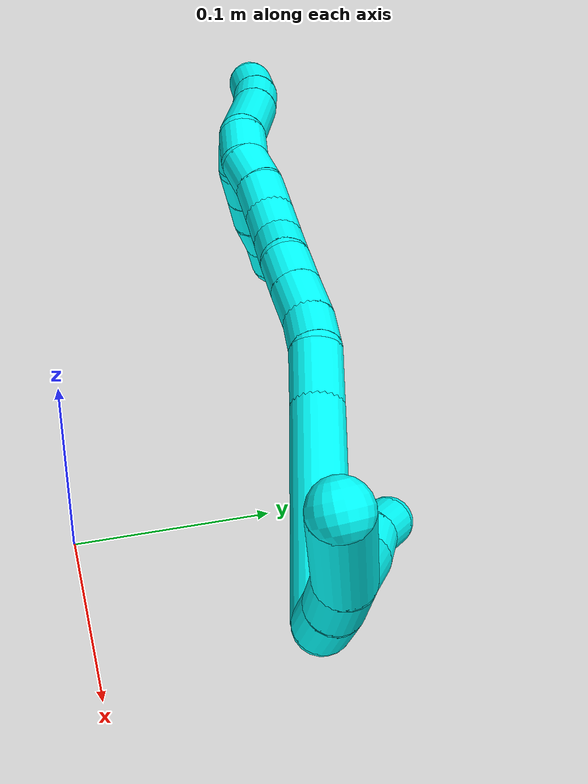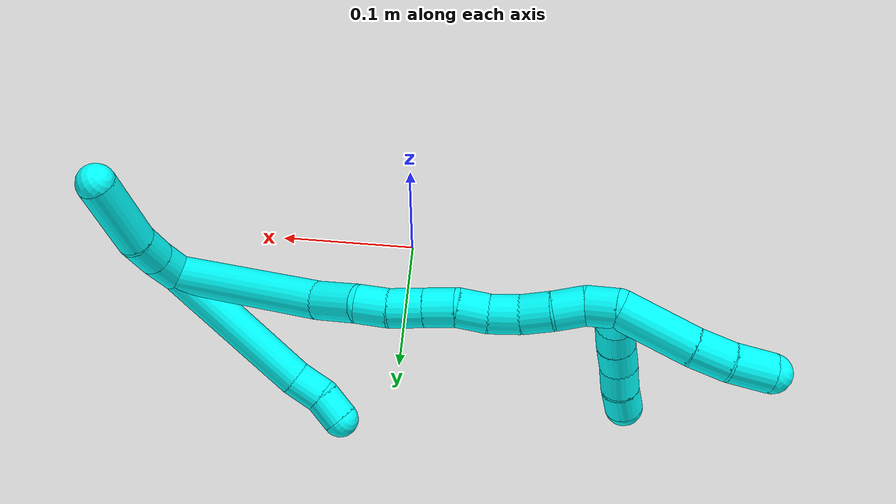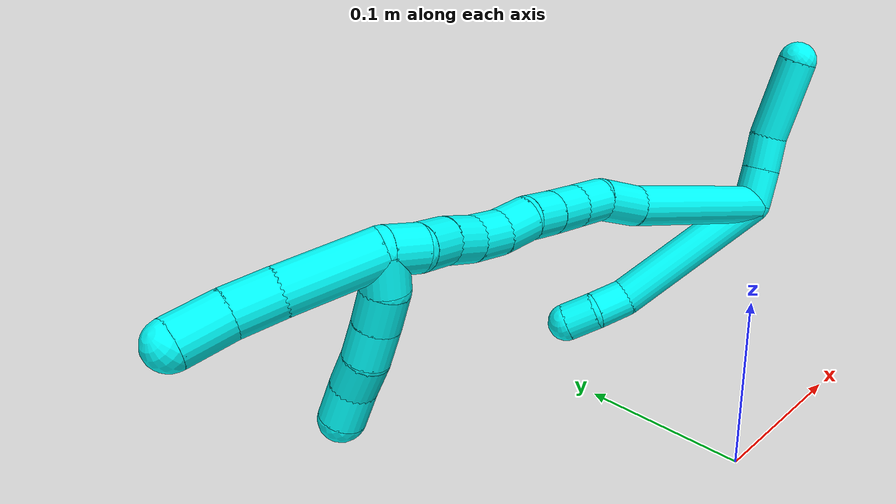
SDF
<sdf version="1.7">
 <world name="default">
  <model name="3">
   <static>0</static>
   <link name="3">
    <collision name="collision-cylinder-e_1_2_8">
     <pose>0.004781 -0.052834 -0.007201 1.70625 0.089425 0.102417</pose>
     <geometry><cylinder><radius>0.0125</radius><length>0.107073</length></cylinder></geometry>
     <surface>
      <friction><ode><mu>1.16</mu><mu2>1.16</mu2><slip1>0</slip1><slip2>0</slip2></ode></friction>
      <contact><ode><kp>1e+06</kp><kd>1</kd><max_vel>0</max_vel><min_depth>0.001</min_depth></ode></contact>
     </surface>
    </collision>
    <visual name="visual-cylinder-e_1_2_8">
     <pose>0.004781 -0.052834 -0.007201 1.70625 0.089425 0.102417</pose>
     <geometry><cylinder><radius>0.0125</radius><length>0.107073</length></cylinder></geometry>
     <material><ambient>0.003922 1 0.996078 1</ambient></material>
    </visual>
    <collision name="collision-cylinder-e_2_8_9">
     <pose>0.011243 -0.115775 -0.019031 2.00031 0.150084 0.233199</pose>
     <geometry><cylinder><radius>0.0125</radius><length>0.022487</length></cylinder></geometry>
     <surface>
      <friction><ode><mu>1.16</mu><mu2>1.16</mu2><slip1>0</slip1><slip2>0</slip2></ode></friction>
      <contact><ode><kp>1e+06</kp><kd>1</kd><max_vel>0</max_vel><min_depth>0.001</min_depth></ode></contact>
     </surface>
    </collision>
    <visual name="visual-cylinder-e_2_8_9">
     <pose>0.011243 -0.115775 -0.019031 2.00031 0.150084 0.233199</pose>
     <geometry><cylinder><radius>0.0125</radius><length>0.022487</length></cylinder></geometry>
     <material><ambient>0.003922 1 0.996078 1</ambient></material>
    </visual>
    <collision name="collision-cylinder-e_3_9_6">
     <pose>0.016398 -0.135326 -0.025449 1.75805 0.346818 0.416808</pose>
     <geometry><cylinder><radius>0.0125</radius><length>0.02044</length></cylinder></geometry>
     <surface>
      <friction><ode><mu>1.16</mu><mu2>1.16</mu2><slip1>0</slip1><slip2>0</slip2></ode></friction>
      <contact><ode><kp>1e+06</kp><kd>1</kd><max_vel>0</max_vel><min_depth>0.001</min_depth></ode></contact>
     </surface>
    </collision>
    <visual name="visual-cylinder-e_3_9_6">
     <pose>0.016398 -0.135326 -0.025449 1.75805 0.346818 0.416808</pose>
     <geometry><cylinder><radius>0.0125</radius><length>0.02044</length></cylinder></geometry>
     <material><ambient>0.003922 1 0.996078 1</ambient></material>
    </visual>
    <collision name="collision-cylinder-e_1_2_10">
     <pose>0.004849 0.010512 -0.004087 -1.94159 0.406061 -0.584589</pose>
     <geometry><cylinder><radius>0.0125</radius><length>0.024554</length></cylinder></geometry>
     <surface>
      <friction><ode><mu>1.16</mu><mu2>1.16</mu2><slip1>0</slip1><slip2>0</slip2></ode></friction>
      <contact><ode><kp>1e+06</kp><kd>1</kd><max_vel>0</max_vel><min_depth>0.001</min_depth></ode></contact>
     </surface>
    </collision>
    <visual name="visual-cylinder-e_1_2_10">
     <pose>0.004849 0.010512 -0.004087 -1.94159 0.406061 -0.584589</pose>
     <geometry><cylinder><radius>0.0125</radius><length>0.024554</length></cylinder></geometry>
     <material><ambient>0.003922 1 0.996078 1</ambient></material>
    </visual>
    <collision name="collision-cylinder-e_2_10_11">
     <pose>0.014024 0.030395 -0.013085 -2.05357 0.388116 -0.628283</pose>
     <geometry><cylinder><radius>0.0125</radius><length>0.022861</length></cylinder></geometry>
     <surface>
      <friction><ode><mu>1.16</mu><mu2>1.16</mu2><slip1>0</slip1><slip2>0</slip2></ode></friction>
      <contact><ode><kp>1e+06</kp><kd>1</kd><max_vel>0</max_vel><min_depth>0.001</min_depth></ode></contact>
     </surface>
    </collision>
    <visual name="visual-cylinder-e_2_10_11">
     <pose>0.014024 0.030395 -0.013085 -2.05357 0.388116 -0.628283</pose>
     <geometry><cylinder><radius>0.0125</radius><length>0.022861</length></cylinder></geometry>
     <material><ambient>0.003922 1 0.996078 1</ambient></material>
    </visual>
    <collision name="collision-cylinder-e_3_11_5">
     <pose>0.023322 0.062152 -0.030862 -2.0924 0.190226 -0.326779</pose>
     <geometry><cylinder><radius>0.0125</radius><length>0.052585</length></cylinder></geometry>
     <surface>
      <friction><ode><mu>1.16</mu><mu2>1.16</mu2><slip1>0</slip1><slip2>0</slip2></ode></friction>
      <contact><ode><kp>1e+06</kp><kd>1</kd><max_vel>0</max_vel><min_depth>0.001</min_depth></ode></contact>
     </surface>
    </collision>
    <visual name="visual-cylinder-e_3_11_5">
     <pose>0.023322 0.062152 -0.030862 -2.0924 0.190226 -0.326779</pose>
     <geometry><cylinder><radius>0.0125</radius><length>0.052585</length></cylinder></geometry>
     <material><ambient>0.003922 1 0.996078 1</ambient></material>
    </visual>
    <collision name="collision-cylinder-e_1_2_12">
     <pose>0.00473 -0.030917 -0.043187 2.52029 0.088826 0.275109</pose>
     <geometry><cylinder><radius>0.0125</radius><length>0.106646</length></cylinder></geometry>
     <surface>
      <friction><ode><mu>1.16</mu><mu2>1.16</mu2><slip1>0</slip1><slip2>0</slip2></ode></friction>
      <contact><ode><kp>1e+06</kp><kd>1</kd><max_vel>0</max_vel><min_depth>0.001</min_depth></ode></contact>
     </surface>
    </collision>
    <visual name="visual-cylinder-e_1_2_12">
     <pose>0.00473 -0.030917 -0.043187 2.52029 0.088826 0.275109</pose>
     <geometry><cylinder><radius>0.0125</radius><length>0.106646</length></cylinder></geometry>
     <material><ambient>0.003922 1 0.996078 1</ambient></material>
    </visual>
    <collision name="collision-cylinder-e_2_12_13">
     <pose>0.011126 -0.068429 -0.099364 2.67179 0.113856 0.467556</pose>
     <geometry><cylinder><radius>0.0125</radius><length>0.029327</length></cylinder></geometry>
     <surface>
      <friction><ode><mu>1.16</mu><mu2>1.16</mu2><slip1>0</slip1><slip2>0</slip2></ode></friction>
      <contact><ode><kp>1e+06</kp><kd>1</kd><max_vel>0</max_vel><min_depth>0.001</min_depth></ode></contact>
     </surface>
    </collision>
    <visual name="visual-cylinder-e_2_12_13">
     <pose>0.011126 -0.068429 -0.099364 2.67179 0.113856 0.467556</pose>
     <geometry><cylinder><radius>0.0125</radius><length>0.029327</length></cylinder></geometry>
     <material><ambient>0.003922 1 0.996078 1</ambient></material>
    </visual>
    <collision name="collision-cylinder-e_3_13_14">
     <pose>0.011972 -0.081929 -0.119982 2.40591 -0.079601 -0.20593</pose>
     <geometry><cylinder><radius>0.0125</radius><length>0.020644</length></cylinder></geometry>
     <surface>
      <friction><ode><mu>1.16</mu><mu2>1.16</mu2><slip1>0</slip1><slip2>0</slip2></ode></friction>
      <contact><ode><kp>1e+06</kp><kd>1</kd><max_vel>0</max_vel><min_depth>0.001</min_depth></ode></contact>
     </surface>
    </collision>
    <visual name="visual-cylinder-e_3_13_14">
     <pose>0.011972 -0.081929 -0.119982 2.40591 -0.079601 -0.20593</pose>
     <geometry><cylinder><radius>0.0125</radius><length>0.020644</length></cylinder></geometry>
     <material><ambient>0.003922 1 0.996078 1</ambient></material>
    </visual>
    <collision name="collision-cylinder-e_4_14_15">
     <pose>0.009046 -0.095253 -0.13657 2.51994 -0.188733 -0.573056</pose>
     <geometry><cylinder><radius>0.0125</radius><length>0.02244</length></cylinder></geometry>
     <surface>
      <friction><ode><mu>1.16</mu><mu2>1.16</mu2><slip1>0</slip1><slip2>0</slip2></ode></friction>
      <contact><ode><kp>1e+06</kp><kd>1</kd><max_vel>0</max_vel><min_depth>0.001</min_depth></ode></contact>
     </surface>
    </collision>
    <visual name="visual-cylinder-e_4_14_15">
     <pose>0.009046 -0.095253 -0.13657 2.51994 -0.188733 -0.573056</pose>
     <geometry><cylinder><radius>0.0125</radius><length>0.02244</length></cylinder></geometry>
     <material><ambient>0.003922 1 0.996078 1</ambient></material>
    </visual>
    <collision name="collision-cylinder-e_5_15_16">
     <pose>0.005234 -0.107335 -0.153685 2.53461 -0.170235 -0.531998</pose>
     <geometry><cylinder><radius>0.0125</radius><length>0.020152</length></cylinder></geometry>
     <surface>
      <friction><ode><mu>1.16</mu><mu2>1.16</mu2><slip1>0</slip1><slip2>0</slip2></ode></friction>
      <contact><ode><kp>1e+06</kp><kd>1</kd><max_vel>0</max_vel><min_depth>0.001</min_depth></ode></contact>
     </surface>
    </collision>
    <visual name="visual-cylinder-e_5_15_16">
     <pose>0.005234 -0.107335 -0.153685 2.53461 -0.170235 -0.531998</pose>
     <geometry><cylinder><radius>0.0125</radius><length>0.020152</length></cylinder></geometry>
     <material><ambient>0.003922 1 0.996078 1</ambient></material>
    </visual>
    <collision name="collision-cylinder-e_6_16_17">
     <pose>0.001977 -0.120855 -0.168214 2.25229 -0.152052 -0.31705</pose>
     <geometry><cylinder><radius>0.0125</radius><length>0.020466</length></cylinder></geometry>
     <surface>
      <friction><ode><mu>1.16</mu><mu2>1.16</mu2><slip1>0</slip1><slip2>0</slip2></ode></friction>
      <contact><ode><kp>1e+06</kp><kd>1</kd><max_vel>0</max_vel><min_depth>0.001</min_depth></ode></contact>
     </surface>
    </collision>
    <visual name="visual-cylinder-e_6_16_17">
     <pose>0.001977 -0.120855 -0.168214 2.25229 -0.152052 -0.31705</pose>
     <geometry><cylinder><radius>0.0125</radius><length>0.020466</length></cylinder></geometry>
     <material><ambient>0.003922 1 0.996078 1</ambient></material>
    </visual>
    <collision name="collision-cylinder-e_7_17_18">
     <pose>-0.001071 -0.1346 -0.182647 2.51061 -0.148858 -0.449207</pose>
     <geometry><cylinder><radius>0.0125</radius><length>0.020189</length></cylinder></geometry>
     <surface>
      <friction><ode><mu>1.16</mu><mu2>1.16</mu2><slip1>0</slip1><slip2>0</slip2></ode></friction>
      <contact><ode><kp>1e+06</kp><kd>1</kd><max_vel>0</max_vel><min_depth>0.001</min_depth></ode></contact>
     </surface>
    </collision>
    <visual name="visual-cylinder-e_7_17_18">
     <pose>-0.001071 -0.1346 -0.182647 2.51061 -0.148858 -0.449207</pose>
     <geometry><cylinder><radius>0.0125</radius><length>0.020189</length></cylinder></geometry>
     <material><ambient>0.003922 1 0.996078 1</ambient></material>
    </visual>
    <collision name="collision-cylinder-e_8_18_19">
     <pose>-0.004053 -0.1449 -0.199572 2.67992 -0.148941 -0.614769</pose>
     <geometry><cylinder><radius>0.0125</radius><length>0.020023</length></cylinder></geometry>
     <surface>
      <friction><ode><mu>1.16</mu><mu2>1.16</mu2><slip1>0</slip1><slip2>0</slip2></ode></friction>
      <contact><ode><kp>1e+06</kp><kd>1</kd><max_vel>0</max_vel><min_depth>0.001</min_depth></ode></contact>
     </surface>
    </collision>
    <visual name="visual-cylinder-e_8_18_19">
     <pose>-0.004053 -0.1449 -0.199572 2.67992 -0.148941 -0.614769</pose>
     <geometry><cylinder><radius>0.0125</radius><length>0.020023</length></cylinder></geometry>
     <material><ambient>0.003922 1 0.996078 1</ambient></material>
    </visual>
    <collision name="collision-cylinder-e_9_19_20">
     <pose>-0.008492 -0.153973 -0.216829 2.63451 -0.298437 -1.05145</pose>
     <geometry><cylinder><radius>0.0125</radius><length>0.02009</length></cylinder></geometry>
     <surface>
      <friction><ode><mu>1.16</mu><mu2>1.16</mu2><slip1>0</slip1><slip2>0</slip2></ode></friction>
      <contact><ode><kp>1e+06</kp><kd>1</kd><max_vel>0</max_vel><min_depth>0.001</min_depth></ode></contact>
     </surface>
    </collision>
    <visual name="visual-cylinder-e_9_19_20">
     <pose>-0.008492 -0.153973 -0.216829 2.63451 -0.298437 -1.05145</pose>
     <geometry><cylinder><radius>0.0125</radius><length>0.02009</length></cylinder></geometry>
     <material><ambient>0.003922 1 0.996078 1</ambient></material>
    </visual>
    <collision name="collision-cylinder-e_10_20_1">
     <pose>-0.01144 -0.164314 -0.233466 2.53841 0.000626 0.002011</pose>
     <geometry><cylinder><radius>0.0125</radius><length>0.020022</length></cylinder></geometry>
     <surface>
      <friction><ode><mu>1.16</mu><mu2>1.16</mu2><slip1>0</slip1><slip2>0</slip2></ode></friction>
      <contact><ode><kp>1e+06</kp><kd>1</kd><max_vel>0</max_vel><min_depth>0.001</min_depth></ode></contact>
     </surface>
    </collision>
    <visual name="visual-cylinder-e_10_20_1">
     <pose>-0.01144 -0.164314 -0.233466 2.53841 0.000626 0.002011</pose>
     <geometry><cylinder><radius>0.0125</radius><length>0.020022</length></cylinder></geometry>
     <material><ambient>0.003922 1 0.996078 1</ambient></material>
    </visual>
    <collision name="collision-cylinder-e_1_1_21">
     <pose>-0.009471 -0.191487 -0.253942 2.08814 0.079187 0.136032</pose>
     <geometry><cylinder><radius>0.0125</radius><length>0.049617</length></cylinder></geometry>
     <surface>
      <friction><ode><mu>1.16</mu><mu2>1.16</mu2><slip1>0</slip1><slip2>0</slip2></ode></friction>
      <contact><ode><kp>1e+06</kp><kd>1</kd><max_vel>0</max_vel><min_depth>0.001</min_depth></ode></contact>
     </surface>
    </collision>
    <visual name="visual-cylinder-e_1_1_21">
     <pose>-0.009471 -0.191487 -0.253942 2.08814 0.079187 0.136032</pose>
     <geometry><cylinder><radius>0.0125</radius><length>0.049617</length></cylinder></geometry>
     <material><ambient>0.003922 1 0.996078 1</ambient></material>
    </visual>
    <collision name="collision-cylinder-e_2_21_22">
     <pose>-0.007497 -0.223177 -0.272616 2.13444 0.000966 0.001753</pose>
     <geometry><cylinder><radius>0.0125</radius><length>0.024121</length></cylinder></geometry>
     <surface>
      <friction><ode><mu>1.16</mu><mu2>1.16</mu2><slip1>0</slip1><slip2>0</slip2></ode></friction>
      <contact><ode><kp>1e+06</kp><kd>1</kd><max_vel>0</max_vel><min_depth>0.001</min_depth></ode></contact>
     </surface>
    </collision>
    <visual name="visual-cylinder-e_2_21_22">
     <pose>-0.007497 -0.223177 -0.272616 2.13444 0.000966 0.001753</pose>
     <geometry><cylinder><radius>0.0125</radius><length>0.024121</length></cylinder></geometry>
     <material><ambient>0.003922 1 0.996078 1</ambient></material>
    </visual>
    <collision name="collision-cylinder-e_3_22_4">
     <pose>-0.009457 -0.244103 -0.286366 2.16852 -0.150705 -0.28354</pose>
     <geometry><cylinder><radius>0.0125</radius><length>0.026262</length></cylinder></geometry>
     <surface>
      <friction><ode><mu>1.16</mu><mu2>1.16</mu2><slip1>0</slip1><slip2>0</slip2></ode></friction>
      <contact><ode><kp>1e+06</kp><kd>1</kd><max_vel>0</max_vel><min_depth>0.001</min_depth></ode></contact>
     </surface>
    </collision>
    <visual name="visual-cylinder-e_3_22_4">
     <pose>-0.009457 -0.244103 -0.286366 2.16852 -0.150705 -0.28354</pose>
     <geometry><cylinder><radius>0.0125</radius><length>0.026262</length></cylinder></geometry>
     <material><ambient>0.003922 1 0.996078 1</ambient></material>
    </visual>
    <collision name="collision-cylinder-e_1_1_23">
     <pose>-0.014591 -0.176464 -0.234771 0.750484 -0.321229 -0.127461</pose>
     <geometry><cylinder><radius>0.0125</radius><length>0.02</length></cylinder></geometry>
     <surface>
      <friction><ode><mu>1.16</mu><mu2>1.16</mu2><slip1>0</slip1><slip2>0</slip2></ode></friction>
      <contact><ode><kp>1e+06</kp><kd>1</kd><max_vel>0</max_vel><min_depth>0.001</min_depth></ode></contact>
     </surface>
    </collision>
    <visual name="visual-cylinder-e_1_1_23">
     <pose>-0.014591 -0.176464 -0.234771 0.750484 -0.321229 -0.127461</pose>
     <geometry><cylinder><radius>0.0125</radius><length>0.02</length></cylinder></geometry>
     <material><ambient>0.003922 1 0.996078 1</ambient></material>
    </visual>
    <collision name="collision-cylinder-e_2_23_24">
     <pose>-0.018557 -0.19105 -0.222045 0.951336 -0.080955 -0.041718</pose>
     <geometry><cylinder><radius>0.0125</radius><length>0.02</length></cylinder></geometry>
     <surface>
      <friction><ode><mu>1.16</mu><mu2>1.16</mu2><slip1>0</slip1><slip2>0</slip2></ode></friction>
      <contact><ode><kp>1e+06</kp><kd>1</kd><max_vel>0</max_vel><min_depth>0.001</min_depth></ode></contact>
     </surface>
    </collision>
    <visual name="visual-cylinder-e_2_23_24">
     <pose>-0.018557 -0.19105 -0.222045 0.951336 -0.080955 -0.041718</pose>
     <geometry><cylinder><radius>0.0125</radius><length>0.02</length></cylinder></geometry>
     <material><ambient>0.003922 1 0.996078 1</ambient></material>
    </visual>
    <collision name="collision-cylinder-e_3_24_25">
     <pose>-0.020363 -0.207572 -0.210934 1.0063 -0.099889 -0.055011</pose>
     <geometry><cylinder><radius>0.0125</radius><length>0.02</length></cylinder></geometry>
     <surface>
      <friction><ode><mu>1.16</mu><mu2>1.16</mu2><slip1>0</slip1><slip2>0</slip2></ode></friction>
      <contact><ode><kp>1e+06</kp><kd>1</kd><max_vel>0</max_vel><min_depth>0.001</min_depth></ode></contact>
     </surface>
    </collision>
    <visual name="visual-cylinder-e_3_24_25">
     <pose>-0.020363 -0.207572 -0.210934 1.0063 -0.099889 -0.055011</pose>
     <geometry><cylinder><radius>0.0125</radius><length>0.02</length></cylinder></geometry>
     <material><ambient>0.003922 1 0.996078 1</ambient></material>
    </visual>
    <collision name="collision-cylinder-e_4_25_26">
     <pose>-0.020764 -0.224342 -0.200162 0.993336 0.059602 0.03231</pose>
     <geometry><cylinder><radius>0.0125</radius><length>0.02</length></cylinder></geometry>
     <surface>
      <friction><ode><mu>1.16</mu><mu2>1.16</mu2><slip1>0</slip1><slip2>0</slip2></ode></friction>
      <contact><ode><kp>1e+06</kp><kd>1</kd><max_vel>0</max_vel><min_depth>0.001</min_depth></ode></contact>
     </surface>
    </collision>
    <visual name="visual-cylinder-e_4_25_26">
     <pose>-0.020764 -0.224342 -0.200162 0.993336 0.059602 0.03231</pose>
     <geometry><cylinder><radius>0.0125</radius><length>0.02</length></cylinder></geometry>
     <material><ambient>0.003922 1 0.996078 1</ambient></material>
    </visual>
    <collision name="collision-cylinder-e_5_26_3">
     <pose>-0.020972 -0.241353 -0.189755 1.05023 -0.080461 -0.046633</pose>
     <geometry><cylinder><radius>0.0125</radius><length>0.02</length></cylinder></geometry>
     <surface>
      <friction><ode><mu>1.16</mu><mu2>1.16</mu2><slip1>0</slip1><slip2>0</slip2></ode></friction>
      <contact><ode><kp>1e+06</kp><kd>1</kd><max_vel>0</max_vel><min_depth>0.001</min_depth></ode></contact>
     </surface>
    </collision>
    <visual name="visual-cylinder-e_5_26_3">
     <pose>-0.020972 -0.241353 -0.189755 1.05023 -0.080461 -0.046633</pose>
     <geometry><cylinder><radius>0.0125</radius><length>0.02</length></cylinder></geometry>
     <material><ambient>0.003922 1 0.996078 1</ambient></material>
    </visual>
    <collision name="collision-sphere-3">
     <pose>-0.021776 -0.250001 -0.184797 0 -0 0</pose>
     <geometry><sphere><radius>0.0125</radius></sphere></geometry>
     <surface>
      <friction><ode><mu>1.16</mu><mu2>1.16</mu2><slip1>0</slip1><slip2>0</slip2></ode></friction>
      <contact><ode><kp>1e+06</kp><kd>1</kd><max_vel>0</max_vel><min_depth>0.001</min_depth></ode></contact>
     </surface>
    </collision>
    <visual name="visual-sphere-3">
     <pose>-0.021776 -0.250001 -0.184797 0 -0 0</pose>
     <geometry><sphere><radius>0.0125</radius></sphere></geometry>
     <material><ambient>0.003922 1 0.996078 1</ambient></material>
    </visual>
    <collision name="collision-sphere-26">
     <pose>-0.020169 -0.232706 -0.194713 0 -0 0</pose>
     <geometry><sphere><radius>0.0125</radius></sphere></geometry>
     <surface>
      <friction><ode><mu>1.16</mu><mu2>1.16</mu2><slip1>0</slip1><slip2>0</slip2></ode></friction>
      <contact><ode><kp>1e+06</kp><kd>1</kd><max_vel>0</max_vel><min_depth>0.001</min_depth></ode></contact>
     </surface>
    </collision>
    <visual name="visual-sphere-26">
     <pose>-0.020169 -0.232706 -0.194713 0 -0 0</pose>
     <geometry><sphere><radius>0.0125</radius></sphere></geometry>
     <material><ambient>0.003922 1 0.996078 1</ambient></material>
    </visual>
    <collision name="collision-sphere-25">
     <pose>-0.02136 -0.215979 -0.205611 0 -0 0</pose>
     <geometry><sphere><radius>0.0125</radius></sphere></geometry>
     <surface>
      <friction><ode><mu>1.16</mu><mu2>1.16</mu2><slip1>0</slip1><slip2>0</slip2></ode></friction>
      <contact><ode><kp>1e+06</kp><kd>1</kd><max_vel>0</max_vel><min_depth>0.001</min_depth></ode></contact>
     </surface>
    </collision>
    <visual name="visual-sphere-25">
     <pose>-0.02136 -0.215979 -0.205611 0 -0 0</pose>
     <geometry><sphere><radius>0.0125</radius></sphere></geometry>
     <material><ambient>0.003922 1 0.996078 1</ambient></material>
    </visual>
    <collision name="collision-sphere-24">
     <pose>-0.019365 -0.199166 -0.216258 0 -0 0</pose>
     <geometry><sphere><radius>0.0125</radius></sphere></geometry>
     <surface>
      <friction><ode><mu>1.16</mu><mu2>1.16</mu2><slip1>0</slip1><slip2>0</slip2></ode></friction>
      <contact><ode><kp>1e+06</kp><kd>1</kd><max_vel>0</max_vel><min_depth>0.001</min_depth></ode></contact>
     </surface>
    </collision>
    <visual name="visual-sphere-24">
     <pose>-0.019365 -0.199166 -0.216258 0 -0 0</pose>
     <geometry><sphere><radius>0.0125</radius></sphere></geometry>
     <material><ambient>0.003922 1 0.996078 1</ambient></material>
    </visual>
    <collision name="collision-sphere-23">
     <pose>-0.017748 -0.182935 -0.227831 0 -0 0</pose>
     <geometry><sphere><radius>0.0125</radius></sphere></geometry>
     <surface>
      <friction><ode><mu>1.16</mu><mu2>1.16</mu2><slip1>0</slip1><slip2>0</slip2></ode></friction>
      <contact><ode><kp>1e+06</kp><kd>1</kd><max_vel>0</max_vel><min_depth>0.001</min_depth></ode></contact>
     </surface>
    </collision>
    <visual name="visual-sphere-23">
     <pose>-0.017748 -0.182935 -0.227831 0 -0 0</pose>
     <geometry><sphere><radius>0.0125</radius></sphere></geometry>
     <material><ambient>0.003922 1 0.996078 1</ambient></material>
    </visual>
    <collision name="collision-sphere-4">
     <pose>-0.011428 -0.254834 -0.293672 0 -0 0</pose>
     <geometry><sphere><radius>0.0125</radius></sphere></geometry>
     <surface>
      <friction><ode><mu>1.16</mu><mu2>1.16</mu2><slip1>0</slip1><slip2>0</slip2></ode></friction>
      <contact><ode><kp>1e+06</kp><kd>1</kd><max_vel>0</max_vel><min_depth>0.001</min_depth></ode></contact>
     </surface>
    </collision>
    <visual name="visual-sphere-4">
     <pose>-0.011428 -0.254834 -0.293672 0 -0 0</pose>
     <geometry><sphere><radius>0.0125</radius></sphere></geometry>
     <material><ambient>0.003922 1 0.996078 1</ambient></material>
    </visual>
    <collision name="collision-sphere-22">
     <pose>-0.007485 -0.233372 -0.27906 0 -0 0</pose>
     <geometry><sphere><radius>0.0125</radius></sphere></geometry>
     <surface>
      <friction><ode><mu>1.16</mu><mu2>1.16</mu2><slip1>0</slip1><slip2>0</slip2></ode></friction>
      <contact><ode><kp>1e+06</kp><kd>1</kd><max_vel>0</max_vel><min_depth>0.001</min_depth></ode></contact>
     </surface>
    </collision>
    <visual name="visual-sphere-22">
     <pose>-0.007485 -0.233372 -0.27906 0 -0 0</pose>
     <geometry><sphere><radius>0.0125</radius></sphere></geometry>
     <material><ambient>0.003922 1 0.996078 1</ambient></material>
    </visual>
    <collision name="collision-sphere-21">
     <pose>-0.007508 -0.212982 -0.266173 0 -0 0</pose>
     <geometry><sphere><radius>0.0125</radius></sphere></geometry>
     <surface>
      <friction><ode><mu>1.16</mu><mu2>1.16</mu2><slip1>0</slip1><slip2>0</slip2></ode></friction>
      <contact><ode><kp>1e+06</kp><kd>1</kd><max_vel>0</max_vel><min_depth>0.001</min_depth></ode></contact>
     </surface>
    </collision>
    <visual name="visual-sphere-21">
     <pose>-0.007508 -0.212982 -0.266173 0 -0 0</pose>
     <geometry><sphere><radius>0.0125</radius></sphere></geometry>
     <material><ambient>0.003922 1 0.996078 1</ambient></material>
    </visual>
    <collision name="collision-sphere-1">
     <pose>-0.011433 -0.169993 -0.24171 0 -0 0</pose>
     <geometry><sphere><radius>0.0125</radius></sphere></geometry>
     <surface>
      <friction><ode><mu>1.16</mu><mu2>1.16</mu2><slip1>0</slip1><slip2>0</slip2></ode></friction>
      <contact><ode><kp>1e+06</kp><kd>1</kd><max_vel>0</max_vel><min_depth>0.001</min_depth></ode></contact>
     </surface>
    </collision>
    <visual name="visual-sphere-1">
     <pose>-0.011433 -0.169993 -0.24171 0 -0 0</pose>
     <geometry><sphere><radius>0.0125</radius></sphere></geometry>
     <material><ambient>0.003922 1 0.996078 1</ambient></material>
    </visual>
    <collision name="collision-sphere-11">
     <pose>0.01835 0.039767 -0.017997 0 -0 0</pose>
     <geometry><sphere><radius>0.0125</radius></sphere></geometry>
     <surface>
      <friction><ode><mu>1.16</mu><mu2>1.16</mu2><slip1>0</slip1><slip2>0</slip2></ode></friction>
      <contact><ode><kp>1e+06</kp><kd>1</kd><max_vel>0</max_vel><min_depth>0.001</min_depth></ode></contact>
     </surface>
    </collision>
    <visual name="visual-sphere-11">
     <pose>0.01835 0.039767 -0.017997 0 -0 0</pose>
     <geometry><sphere><radius>0.0125</radius></sphere></geometry>
     <material><ambient>0.003922 1 0.996078 1</ambient></material>
    </visual>
    <collision name="collision-sphere-10">
     <pose>0.009699 0.021024 -0.008174 0 -0 0</pose>
     <geometry><sphere><radius>0.0125</radius></sphere></geometry>
     <surface>
      <friction><ode><mu>1.16</mu><mu2>1.16</mu2><slip1>0</slip1><slip2>0</slip2></ode></friction>
      <contact><ode><kp>1e+06</kp><kd>1</kd><max_vel>0</max_vel><min_depth>0.001</min_depth></ode></contact>
     </surface>
    </collision>
    <visual name="visual-sphere-10">
     <pose>0.009699 0.021024 -0.008174 0 -0 0</pose>
     <geometry><sphere><radius>0.0125</radius></sphere></geometry>
     <material><ambient>0.003922 1 0.996078 1</ambient></material>
    </visual>
    <collision name="collision-sphere-6">
     <pose>0.019872 -0.14477 -0.027239 0 -0 0</pose>
     <geometry><sphere><radius>0.0125</radius></sphere></geometry>
     <surface>
      <friction><ode><mu>1.16</mu><mu2>1.16</mu2><slip1>0</slip1><slip2>0</slip2></ode></friction>
      <contact><ode><kp>1e+06</kp><kd>1</kd><max_vel>0</max_vel><min_depth>0.001</min_depth></ode></contact>
     </surface>
    </collision>
    <visual name="visual-sphere-6">
     <pose>0.019872 -0.14477 -0.027239 0 -0 0</pose>
     <geometry><sphere><radius>0.0125</radius></sphere></geometry>
     <material><ambient>0.003922 1 0.996078 1</ambient></material>
    </visual>
    <collision name="collision-sphere-9">
     <pose>0.012924 -0.125883 -0.02366 0 -0 0</pose>
     <geometry><sphere><radius>0.0125</radius></sphere></geometry>
     <surface>
      <friction><ode><mu>1.16</mu><mu2>1.16</mu2><slip1>0</slip1><slip2>0</slip2></ode></friction>
      <contact><ode><kp>1e+06</kp><kd>1</kd><max_vel>0</max_vel><min_depth>0.001</min_depth></ode></contact>
     </surface>
    </collision>
    <visual name="visual-sphere-9">
     <pose>0.012924 -0.125883 -0.02366 0 -0 0</pose>
     <geometry><sphere><radius>0.0125</radius></sphere></geometry>
     <material><ambient>0.003922 1 0.996078 1</ambient></material>
    </visual>
    <collision name="collision-sphere-2">
     <geometry><sphere><radius>0.0125</radius></sphere></geometry>
     <surface>
      <friction><ode><mu>1.16</mu><mu2>1.16</mu2><slip1>0</slip1><slip2>0</slip2></ode></friction>
      <contact><ode><kp>1e+06</kp><kd>1</kd><max_vel>0</max_vel><min_depth>0.001</min_depth></ode></contact>
     </surface>
    </collision>
    <visual name="visual-sphere-2">
     <geometry><sphere><radius>0.0125</radius></sphere></geometry>
     <material><ambient>0.003922 1 0.996078 1</ambient></material>
    </visual>
    <collision name="collision-sphere-19">
     <pose>-0.005539 -0.14931 -0.208436 0 -0 0</pose>
     <geometry><sphere><radius>0.0125</radius></sphere></geometry>
     <surface>
      <friction><ode><mu>1.16</mu><mu2>1.16</mu2><slip1>0</slip1><slip2>0</slip2></ode></friction>
      <contact><ode><kp>1e+06</kp><kd>1</kd><max_vel>0</max_vel><min_depth>0.001</min_depth></ode></contact>
     </surface>
    </collision>
    <visual name="visual-sphere-19">
     <pose>-0.005539 -0.14931 -0.208436 0 -0 0</pose>
     <geometry><sphere><radius>0.0125</radius></sphere></geometry>
     <material><ambient>0.003922 1 0.996078 1</ambient></material>
    </visual>
    <collision name="collision-sphere-8">
     <pose>0.009562 -0.105668 -0.014401 0 -0 0</pose>
     <geometry><sphere><radius>0.0125</radius></sphere></geometry>
     <surface>
      <friction><ode><mu>1.16</mu><mu2>1.16</mu2><slip1>0</slip1><slip2>0</slip2></ode></friction>
      <contact><ode><kp>1e+06</kp><kd>1</kd><max_vel>0</max_vel><min_depth>0.001</min_depth></ode></contact>
     </surface>
    </collision>
    <visual name="visual-sphere-8">
     <pose>0.009562 -0.105668 -0.014401 0 -0 0</pose>
     <geometry><sphere><radius>0.0125</radius></sphere></geometry>
     <material><ambient>0.003922 1 0.996078 1</ambient></material>
    </visual>
    <collision name="collision-sphere-5">
     <pose>0.028293 0.084537 -0.043726 0 -0 0</pose>
     <geometry><sphere><radius>0.0125</radius></sphere></geometry>
     <surface>
      <friction><ode><mu>1.16</mu><mu2>1.16</mu2><slip1>0</slip1><slip2>0</slip2></ode></friction>
      <contact><ode><kp>1e+06</kp><kd>1</kd><max_vel>0</max_vel><min_depth>0.001</min_depth></ode></contact>
     </surface>
    </collision>
    <visual name="visual-sphere-5">
     <pose>0.028293 0.084537 -0.043726 0 -0 0</pose>
     <geometry><sphere><radius>0.0125</radius></sphere></geometry>
     <material><ambient>0.003922 1 0.996078 1</ambient></material>
    </visual>
    <collision name="collision-sphere-12">
     <pose>0.00946 -0.061834 -0.086374 0 -0 0</pose>
     <geometry><sphere><radius>0.0125</radius></sphere></geometry>
     <surface>
      <friction><ode><mu>1.16</mu><mu2>1.16</mu2><slip1>0</slip1><slip2>0</slip2></ode></friction>
      <contact><ode><kp>1e+06</kp><kd>1</kd><max_vel>0</max_vel><min_depth>0.001</min_depth></ode></contact>
     </surface>
    </collision>
    <visual name="visual-sphere-12">
     <pose>0.00946 -0.061834 -0.086374 0 -0 0</pose>
     <geometry><sphere><radius>0.0125</radius></sphere></geometry>
     <material><ambient>0.003922 1 0.996078 1</ambient></material>
    </visual>
    <collision name="collision-sphere-13">
     <pose>0.012792 -0.075024 -0.112354 0 -0 0</pose>
     <geometry><sphere><radius>0.0125</radius></sphere></geometry>
     <surface>
      <friction><ode><mu>1.16</mu><mu2>1.16</mu2><slip1>0</slip1><slip2>0</slip2></ode></friction>
      <contact><ode><kp>1e+06</kp><kd>1</kd><max_vel>0</max_vel><min_depth>0.001</min_depth></ode></contact>
     </surface>
    </collision>
    <visual name="visual-sphere-13">
     <pose>0.012792 -0.075024 -0.112354 0 -0 0</pose>
     <geometry><sphere><radius>0.0125</radius></sphere></geometry>
     <material><ambient>0.003922 1 0.996078 1</ambient></material>
    </visual>
    <collision name="collision-sphere-14">
     <pose>0.011151 -0.088835 -0.127611 0 -0 0</pose>
     <geometry><sphere><radius>0.0125</radius></sphere></geometry>
     <surface>
      <friction><ode><mu>1.16</mu><mu2>1.16</mu2><slip1>0</slip1><slip2>0</slip2></ode></friction>
      <contact><ode><kp>1e+06</kp><kd>1</kd><max_vel>0</max_vel><min_depth>0.001</min_depth></ode></contact>
     </surface>
    </collision>
    <visual name="visual-sphere-14">
     <pose>0.011151 -0.088835 -0.127611 0 -0 0</pose>
     <geometry><sphere><radius>0.0125</radius></sphere></geometry>
     <material><ambient>0.003922 1 0.996078 1</ambient></material>
    </visual>
    <collision name="collision-sphere-15">
     <pose>0.006941 -0.101671 -0.145529 0 -0 0</pose>
     <geometry><sphere><radius>0.0125</radius></sphere></geometry>
     <surface>
      <friction><ode><mu>1.16</mu><mu2>1.16</mu2><slip1>0</slip1><slip2>0</slip2></ode></friction>
      <contact><ode><kp>1e+06</kp><kd>1</kd><max_vel>0</max_vel><min_depth>0.001</min_depth></ode></contact>
     </surface>
    </collision>
    <visual name="visual-sphere-15">
     <pose>0.006941 -0.101671 -0.145529 0 -0 0</pose>
     <geometry><sphere><radius>0.0125</radius></sphere></geometry>
     <material><ambient>0.003922 1 0.996078 1</ambient></material>
    </visual>
    <collision name="collision-sphere-16">
     <pose>0.003527 -0.113 -0.161842 0 -0 0</pose>
     <geometry><sphere><radius>0.0125</radius></sphere></geometry>
     <surface>
      <friction><ode><mu>1.16</mu><mu2>1.16</mu2><slip1>0</slip1><slip2>0</slip2></ode></friction>
      <contact><ode><kp>1e+06</kp><kd>1</kd><max_vel>0</max_vel><min_depth>0.001</min_depth></ode></contact>
     </surface>
    </collision>
    <visual name="visual-sphere-16">
     <pose>0.003527 -0.113 -0.161842 0 -0 0</pose>
     <geometry><sphere><radius>0.0125</radius></sphere></geometry>
     <material><ambient>0.003922 1 0.996078 1</ambient></material>
    </visual>
    <collision name="collision-sphere-17">
     <pose>0.000427 -0.128711 -0.174586 0 -0 0</pose>
     <geometry><sphere><radius>0.0125</radius></sphere></geometry>
     <surface>
      <friction><ode><mu>1.16</mu><mu2>1.16</mu2><slip1>0</slip1><slip2>0</slip2></ode></friction>
      <contact><ode><kp>1e+06</kp><kd>1</kd><max_vel>0</max_vel><min_depth>0.001</min_depth></ode></contact>
     </surface>
    </collision>
    <visual name="visual-sphere-17">
     <pose>0.000427 -0.128711 -0.174586 0 -0 0</pose>
     <geometry><sphere><radius>0.0125</radius></sphere></geometry>
     <material><ambient>0.003922 1 0.996078 1</ambient></material>
    </visual>
    <collision name="collision-sphere-18">
     <pose>-0.002568 -0.14049 -0.190707 0 -0 0</pose>
     <geometry><sphere><radius>0.0125</radius></sphere></geometry>
     <surface>
      <friction><ode><mu>1.16</mu><mu2>1.16</mu2><slip1>0</slip1><slip2>0</slip2></ode></friction>
      <contact><ode><kp>1e+06</kp><kd>1</kd><max_vel>0</max_vel><min_depth>0.001</min_depth></ode></contact>
     </surface>
    </collision>
    <visual name="visual-sphere-18">
     <pose>-0.002568 -0.14049 -0.190707 0 -0 0</pose>
     <geometry><sphere><radius>0.0125</radius></sphere></geometry>
     <material><ambient>0.003922 1 0.996078 1</ambient></material>
    </visual>
    <collision name="collision-sphere-20">
     <pose>-0.011446 -0.158635 -0.225222 0 -0 0</pose>
     <geometry><sphere><radius>0.0125</radius></sphere></geometry>
     <surface>
      <friction><ode><mu>1.16</mu><mu2>1.16</mu2><slip1>0</slip1><slip2>0</slip2></ode></friction>
      <contact><ode><kp>1e+06</kp><kd>1</kd><max_vel>0</max_vel><min_depth>0.001</min_depth></ode></contact>
     </surface>
    </collision>
    <visual name="visual-sphere-20">
     <pose>-0.011446 -0.158635 -0.225222 0 -0 0</pose>
     <geometry><sphere><radius>0.0125</radius></sphere></geometry>
     <material><ambient>0.003922 1 0.996078 1</ambient></material>
    </visual>
    <inertial>
     <pose>0.001182 -0.099583 -0.117208 0 -0 0</pose>
     <mass>0.75</mass>
     <inertia>
      <ixx>0.000295</ixx>
      <ixy>0</ixy>
      <ixz>0</ixz>
      <iyy>-0.000116</iyy>
      <iyz>0</iyz>
      <izz>0.000136</izz>
     </inertia>
    </inertial>
   </link>
   <pose>0.148792 0.084924 0.08342 2.40849 -0.293704 1.35159</pose>
  </model>
 </world>
</sdf>
